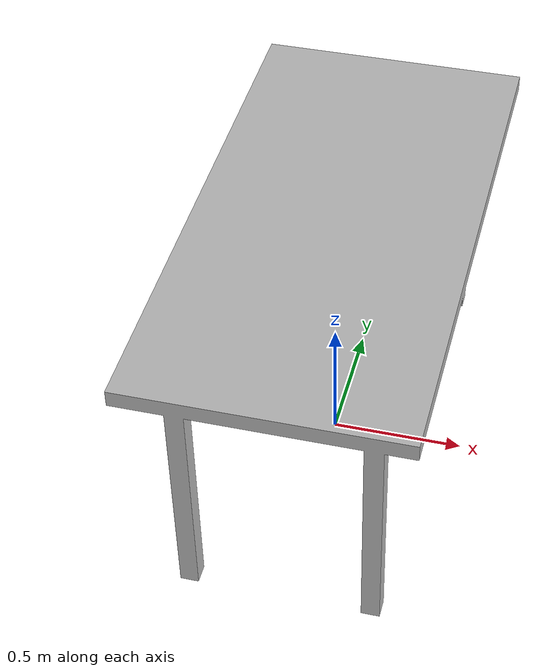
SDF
<?xml version='1.0'?>
<sdf version="1.3">

  <model name="Desk">
    <pose> 0.0 0.0 0.0  0.0 0.0 0.0 </pose>
    <static>true</static>

    <link name="body">
      <inertial>
        <mass>50.0</mass>
        <inertia>
          <ixx>1</ixx>
          <ixy>0</ixy>
          <ixz>0</ixz>
          <iyy>1</iyy>
          <iyz>0</iyz>
          <izz>1</izz>
        </inertia>
      </inertial>

      <visual name="visual">
        <geometry>
          <mesh><uri>model://Desk/meshes/desk.dae</uri>
          <scale>1 1 1</scale></mesh>
        </geometry>
        <material>
          <emissive> 1 1 1 1 </emissive>
        </material>
      </visual>

      <collision name="collision">
        <pose>0.00 0.00 1.03 0.00 0.00 0.00</pose>
        <geometry>
          <box>
            <size>1.0 2.0 0.06</size>
          </box>
        </geometry>
      </collision>

    </link>
  </model>
</sdf>
